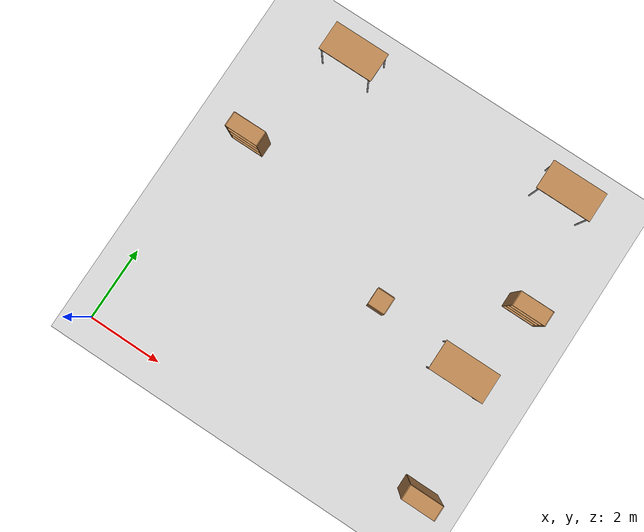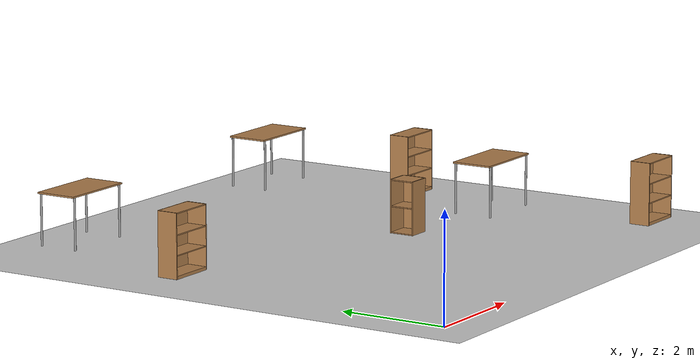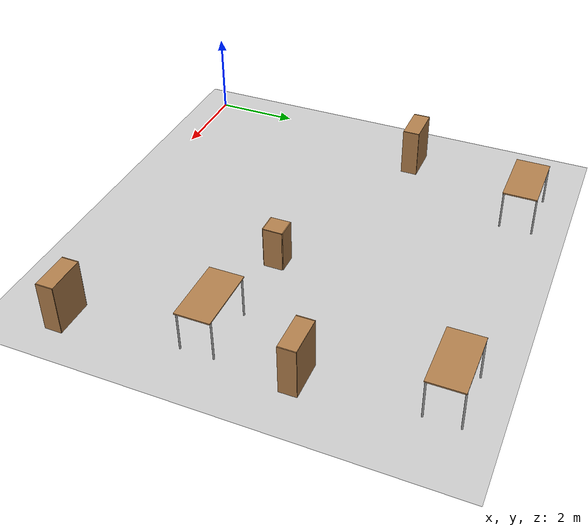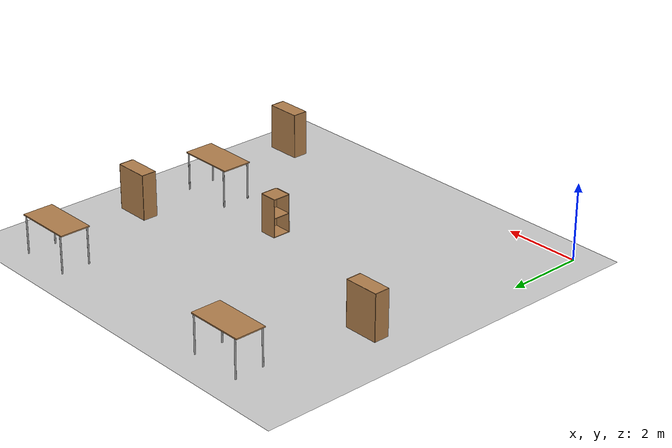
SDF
<sdf version="1.7">
 <world name="default">
  <model name="ground_plane">
   <static>1</static>
   <link name="link">
    <collision name="collision">
     <geometry><plane><normal>0 0 1</normal><size>100 100</size></plane></geometry>
     <surface>
      <contact><collide_bitmask>65535</collide_bitmask></contact>
      <friction><ode><mu>100</mu><mu2>50</mu2></ode></friction>
     </surface>
    </collision>
    <visual name="visual">
     <cast_shadows>0</cast_shadows>
     <geometry><plane><normal>0 0 1</normal><size>100 100</size></plane></geometry>
     <material>
      <script><uri>file://media/materials/scripts/gazebo.material</uri><name>Gazebo/Grey</name></script>
     </material>
    </visual>
   </link>
  </model>
  <model name="table_2">
   <static>1</static>
   <link name="link">
    <collision name="surface">
     <pose>0 0 1 0 -0 0</pose>
     <geometry><box><size>1.5 0.8 0.03</size></box></geometry>
     <surface><friction><ode><mu>0.6</mu><mu2>0.6</mu2></ode></friction></surface>
    </collision>
    <visual name="visual1">
     <pose>0 0 1 0 -0 0</pose>
     <geometry><box><size>1.5 0.8 0.03</size></box></geometry>
     <material>
      <script><uri>file://media/materials/scripts/gazebo.material</uri><name>Gazebo/Wood</name></script>
     </material>
    </visual>
    <collision name="front_left_leg">
     <pose>0.68 0.38 0.5 0 -0 0</pose>
     <geometry><cylinder><radius>0.02</radius><length>1</length></cylinder></geometry>
    </collision>
    <visual name="front_left_leg">
     <pose>0.68 0.38 0.5 0 -0 0</pose>
     <geometry><cylinder><radius>0.02</radius><length>1</length></cylinder></geometry>
     <material>
      <script><uri>file://media/materials/scripts/gazebo.material</uri><name>Gazebo/Grey</name></script>
     </material>
    </visual>
    <collision name="front_right_leg">
     <pose>0.68 -0.38 0.5 0 -0 0</pose>
     <geometry><cylinder><radius>0.02</radius><length>1</length></cylinder></geometry>
    </collision>
    <visual name="front_right_leg">
     <pose>0.68 -0.38 0.5 0 -0 0</pose>
     <geometry><cylinder><radius>0.02</radius><length>1</length></cylinder></geometry>
     <material>
      <script><uri>file://media/materials/scripts/gazebo.material</uri><name>Gazebo/Grey</name></script>
     </material>
    </visual>
    <collision name="back_right_leg">
     <pose>-0.68 -0.38 0.5 0 -0 0</pose>
     <geometry><cylinder><radius>0.02</radius><length>1</length></cylinder></geometry>
    </collision>
    <visual name="back_right_leg">
     <pose>-0.68 -0.38 0.5 0 -0 0</pose>
     <geometry><cylinder><radius>0.02</radius><length>1</length></cylinder></geometry>
     <material>
      <script><uri>file://media/materials/scripts/gazebo.material</uri><name>Gazebo/Grey</name></script>
     </material>
    </visual>
    <collision name="back_left_leg">
     <pose>-0.68 0.38 0.5 0 -0 0</pose>
     <geometry><cylinder><radius>0.02</radius><length>1</length></cylinder></geometry>
    </collision>
    <visual name="back_left_leg">
     <pose>-0.68 0.38 0.5 0 -0 0</pose>
     <geometry><cylinder><radius>0.02</radius><length>1</length></cylinder></geometry>
     <material>
      <script><uri>file://media/materials/scripts/gazebo.material</uri><name>Gazebo/Grey</name></script>
     </material>
    </visual>
   </link>
   <pose>8.28999 3.93907 0 0 -0 0</pose>
  </model>
  <model name="table_7">
   <static>1</static>
   <link name="link">
    <collision name="surface">
     <pose>0 0 1 0 -0 0</pose>
     <geometry><box><size>1.5 0.8 0.03</size></box></geometry>
     <surface><friction><ode><mu>0.6</mu><mu2>0.6</mu2></ode></friction></surface>
    </collision>
    <visual name="visual1">
     <pose>0 0 1 0 -0 0</pose>
     <geometry><box><size>1.5 0.8 0.03</size></box></geometry>
     <material>
      <script><uri>file://media/materials/scripts/gazebo.material</uri><name>Gazebo/Wood</name></script>
     </material>
    </visual>
    <collision name="front_left_leg">
     <pose>0.68 0.38 0.5 0 -0 0</pose>
     <geometry><cylinder><radius>0.02</radius><length>1</length></cylinder></geometry>
    </collision>
    <visual name="front_left_leg">
     <pose>0.68 0.38 0.5 0 -0 0</pose>
     <geometry><cylinder><radius>0.02</radius><length>1</length></cylinder></geometry>
     <material>
      <script><uri>file://media/materials/scripts/gazebo.material</uri><name>Gazebo/Grey</name></script>
     </material>
    </visual>
    <collision name="front_right_leg">
     <pose>0.68 -0.38 0.5 0 -0 0</pose>
     <geometry><cylinder><radius>0.02</radius><length>1</length></cylinder></geometry>
    </collision>
    <visual name="front_right_leg">
     <pose>0.68 -0.38 0.5 0 -0 0</pose>
     <geometry><cylinder><radius>0.02</radius><length>1</length></cylinder></geometry>
     <material>
      <script><uri>file://media/materials/scripts/gazebo.material</uri><name>Gazebo/Grey</name></script>
     </material>
    </visual>
    <collision name="back_right_leg">
     <pose>-0.68 -0.38 0.5 0 -0 0</pose>
     <geometry><cylinder><radius>0.02</radius><length>1</length></cylinder></geometry>
    </collision>
    <visual name="back_right_leg">
     <pose>-0.68 -0.38 0.5 0 -0 0</pose>
     <geometry><cylinder><radius>0.02</radius><length>1</length></cylinder></geometry>
     <material>
      <script><uri>file://media/materials/scripts/gazebo.material</uri><name>Gazebo/Grey</name></script>
     </material>
    </visual>
    <collision name="back_left_leg">
     <pose>-0.68 0.38 0.5 0 -0 0</pose>
     <geometry><cylinder><radius>0.02</radius><length>1</length></cylinder></geometry>
    </collision>
    <visual name="back_left_leg">
     <pose>-0.68 0.38 0.5 0 -0 0</pose>
     <geometry><cylinder><radius>0.02</radius><length>1</length></cylinder></geometry>
     <material>
      <script><uri>file://media/materials/scripts/gazebo.material</uri><name>Gazebo/Grey</name></script>
     </material>
    </visual>
   </link>
   <pose>1.89421 8.93169 0 0 -0 0</pose>
  </model>
  <model name="table_8">
   <static>1</static>
   <link name="link">
    <collision name="surface">
     <pose>0 0 1 0 -0 0</pose>
     <geometry><box><size>1.5 0.8 0.03</size></box></geometry>
     <surface><friction><ode><mu>0.6</mu><mu2>0.6</mu2></ode></friction></surface>
    </collision>
    <visual name="visual1">
     <pose>0 0 1 0 -0 0</pose>
     <geometry><box><size>1.5 0.8 0.03</size></box></geometry>
     <material>
      <script><uri>file://media/materials/scripts/gazebo.material</uri><name>Gazebo/Wood</name></script>
     </material>
    </visual>
    <collision name="front_left_leg">
     <pose>0.68 0.38 0.5 0 -0 0</pose>
     <geometry><cylinder><radius>0.02</radius><length>1</length></cylinder></geometry>
    </collision>
    <visual name="front_left_leg">
     <pose>0.68 0.38 0.5 0 -0 0</pose>
     <geometry><cylinder><radius>0.02</radius><length>1</length></cylinder></geometry>
     <material>
      <script><uri>file://media/materials/scripts/gazebo.material</uri><name>Gazebo/Grey</name></script>
     </material>
    </visual>
    <collision name="front_right_leg">
     <pose>0.68 -0.38 0.5 0 -0 0</pose>
     <geometry><cylinder><radius>0.02</radius><length>1</length></cylinder></geometry>
    </collision>
    <visual name="front_right_leg">
     <pose>0.68 -0.38 0.5 0 -0 0</pose>
     <geometry><cylinder><radius>0.02</radius><length>1</length></cylinder></geometry>
     <material>
      <script><uri>file://media/materials/scripts/gazebo.material</uri><name>Gazebo/Grey</name></script>
     </material>
    </visual>
    <collision name="back_right_leg">
     <pose>-0.68 -0.38 0.5 0 -0 0</pose>
     <geometry><cylinder><radius>0.02</radius><length>1</length></cylinder></geometry>
    </collision>
    <visual name="back_right_leg">
     <pose>-0.68 -0.38 0.5 0 -0 0</pose>
     <geometry><cylinder><radius>0.02</radius><length>1</length></cylinder></geometry>
     <material>
      <script><uri>file://media/materials/scripts/gazebo.material</uri><name>Gazebo/Grey</name></script>
     </material>
    </visual>
    <collision name="back_left_leg">
     <pose>-0.68 0.38 0.5 0 -0 0</pose>
     <geometry><cylinder><radius>0.02</radius><length>1</length></cylinder></geometry>
    </collision>
    <visual name="back_left_leg">
     <pose>-0.68 0.38 0.5 0 -0 0</pose>
     <geometry><cylinder><radius>0.02</radius><length>1</length></cylinder></geometry>
     <material>
      <script><uri>file://media/materials/scripts/gazebo.material</uri><name>Gazebo/Grey</name></script>
     </material>
    </visual>
   </link>
   <pose>8.10734 8.95209 0 0 -0 0</pose>
  </model>
  <model name="cabinet_2">
   <static>1</static>
   <link name="cabinet_bottom_plate">
    <inertial>
     <pose>0 0 -1 0 -0 0</pose>
     <inertia><ixx>2.05</ixx><ixy>0</ixy><ixz>0</ixz><iyy>2.05</iyy><iyz>0</iyz><izz>2.05</izz></inertia>
     <mass>25</mass>
    </inertial>
    <collision name="cabinet_bottom_plate_geom">
     <pose>0 0 0.01 0 -0 0</pose>
     <geometry><box><size>0.45 0.45 0.02</size></box></geometry>
    </collision>
    <visual name="cabinet_bottom_plate_geom_visual">
     <pose>0 0 0.01 0 -0 0</pose>
     <geometry><box><size>0.45 0.45 0.02</size></box></geometry>
     <material>
      <script><uri>file://media/materials/scripts/gazebo.material</uri><name>Gazebo/Wood</name></script>
     </material>
    </visual>
    <collision name="cabinet_bottom_plate_geom_cabinet_back_plate">
     <pose>0.235 0 0.51 0 -0 0</pose>
     <geometry><box><size>0.02 0.45 1.02</size></box></geometry>
    </collision>
    <visual name="cabinet_bottom_plate_geom_cabinet_back_plate_visual">
     <pose>0.235 0 0.51 0 -0 0</pose>
     <geometry><box><size>0.02 0.45 1.02</size></box></geometry>
     <material>
      <script><uri>file://media/materials/scripts/gazebo.material</uri><name>Gazebo/Wood</name></script>
     </material>
    </visual>
    <collision name="cabinet_bottom_plate_geom_cabinet_left_plate">
     <pose>0 0.235 0.51 0 -0 0</pose>
     <geometry><box><size>0.45 0.02 1.02</size></box></geometry>
    </collision>
    <visual name="cabinet_bottom_plate_geom_cabinet_left_plate_visual">
     <pose>0 0.235 0.51 0 -0 0</pose>
     <geometry><box><size>0.45 0.02 1.02</size></box></geometry>
     <material>
      <script><uri>file://media/materials/scripts/gazebo.material</uri><name>Gazebo/Wood</name></script>
     </material>
    </visual>
    <collision name="cabinet_bottom_plate_geom_cabinet_middle_plate">
     <pose>0 0 0.51 0 -0 0</pose>
     <geometry><box><size>0.45 0.45 0.02</size></box></geometry>
    </collision>
    <visual name="cabinet_bottom_plate_geom_cabinet_middle_plate_visual">
     <pose>0 0 0.51 0 -0 0</pose>
     <geometry><box><size>0.45 0.45 0.02</size></box></geometry>
     <material>
      <script><uri>file://media/materials/scripts/gazebo.material</uri><name>Gazebo/Wood</name></script>
     </material>
    </visual>
    <collision name="cabinet_bottom_plate_geom_cabinet_right_plate">
     <pose>0 -0.235 0.51 0 -0 0</pose>
     <geometry><box><size>0.45 0.02 1.02</size></box></geometry>
    </collision>
    <visual name="cabinet_bottom_plate_geom_cabinet_right_plate_visual">
     <pose>0 -0.235 0.51 0 -0 0</pose>
     <geometry><box><size>0.45 0.02 1.02</size></box></geometry>
     <material>
      <script><uri>file://media/materials/scripts/gazebo.material</uri><name>Gazebo/Wood</name></script>
     </material>
    </visual>
    <collision name="cabinet_bottom_plate_geom_cabinet_top_plate">
     <pose>0 0 1.01 0 -0 0</pose>
     <geometry><box><size>0.45 0.45 0.02</size></box></geometry>
    </collision>
    <visual name="cabinet_bottom_plate_geom_cabinet_top_plate_visual">
     <pose>0 0 1.01 0 -0 0</pose>
     <geometry><box><size>0.45 0.45 0.02</size></box></geometry>
     <material>
      <script><uri>file://media/materials/scripts/gazebo.material</uri><name>Gazebo/Wood</name></script>
     </material>
    </visual>
   </link>
   <pose>5.75063 4.24851 0 0 -0 0</pose>
  </model>
  <model name="bookshelf_4">
   <static>1</static>
   <link name="link">
    <inertial><mass>1</mass></inertial>
    <collision name="back">
     <pose>0 0.005 0.6 0 -0 0</pose>
     <geometry><box><size>0.9 0.01 1.2</size></box></geometry>
    </collision>
    <visual name="visual1">
     <pose>0 0.005 0.6 0 -0 0</pose>
     <geometry><box><size>0.9 0.01 1.2</size></box></geometry>
     <material>
      <script><uri>file://media/materials/scripts/gazebo.material</uri><name>Gazebo/Wood</name></script>
     </material>
    </visual>
    <collision name="left_side">
     <pose>0.45 -0.195 0.6 0 -0 0</pose>
     <geometry><box><size>0.02 0.4 1.2</size></box></geometry>
    </collision>
    <visual name="visual2">
     <pose>0.45 -0.195 0.6 0 -0 0</pose>
     <geometry><box><size>0.02 0.4 1.2</size></box></geometry>
     <material>
      <script><uri>file://media/materials/scripts/gazebo.material</uri><name>Gazebo/Wood</name></script>
     </material>
    </visual>
    <collision name="right_side">
     <pose>-0.45 -0.195 0.6 0 -0 0</pose>
     <geometry><box><size>0.02 0.4 1.2</size></box></geometry>
    </collision>
    <visual name="visual3">
     <pose>-0.45 -0.195 0.6 0 -0 0</pose>
     <geometry><box><size>0.02 0.4 1.2</size></box></geometry>
     <material>
      <script><uri>file://media/materials/scripts/gazebo.material</uri><name>Gazebo/Wood</name></script>
     </material>
    </visual>
    <collision name="bottom">
     <pose>0 -0.195 0.03 0 -0 0</pose>
     <geometry><box><size>0.88 0.4 0.06</size></box></geometry>
    </collision>
    <visual name="visual4">
     <pose>0 -0.195 0.03 0 -0 0</pose>
     <geometry><box><size>0.88 0.4 0.06</size></box></geometry>
     <material>
      <script><uri>file://media/materials/scripts/gazebo.material</uri><name>Gazebo/Wood</name></script>
     </material>
    </visual>
    <collision name="top">
     <pose>0 -0.195 1.19 0 -0 0</pose>
     <geometry><box><size>0.88 0.4 0.02</size></box></geometry>
    </collision>
    <visual name="visual5">
     <pose>0 -0.195 1.19 0 -0 0</pose>
     <geometry><box><size>0.88 0.4 0.02</size></box></geometry>
     <material>
      <script><uri>file://media/materials/scripts/gazebo.material</uri><name>Gazebo/Wood</name></script>
     </material>
    </visual>
    <collision name="low_shelf">
     <pose>0 -0.195 0.43 0 -0 0</pose>
     <geometry><box><size>0.88 0.4 0.02</size></box></geometry>
    </collision>
    <visual name="visual6">
     <pose>0 -0.195 0.43 0 -0 0</pose>
     <geometry><box><size>0.88 0.4 0.02</size></box></geometry>
     <material>
      <script><uri>file://media/materials/scripts/gazebo.material</uri><name>Gazebo/Wood</name></script>
     </material>
    </visual>
    <collision name="high_shelf">
     <pose>0 -0.195 0.8 0 -0 0</pose>
     <geometry><box><size>0.88 0.4 0.02</size></box></geometry>
    </collision>
    <visual name="visual7">
     <pose>0 -0.195 0.8 0 -0 0</pose>
     <geometry><box><size>0.88 0.4 0.02</size></box></geometry>
     <material>
      <script><uri>file://media/materials/scripts/gazebo.material</uri><name>Gazebo/Wood</name></script>
     </material>
    </visual>
   </link>
   <pose>0.818644 6.08096 0 0 -0 0</pose>
  </model>
  <model name="bookshelf_5">
   <static>1</static>
   <link name="link">
    <inertial><mass>1</mass></inertial>
    <collision name="back">
     <pose>0 0.005 0.6 0 -0 0</pose>
     <geometry><box><size>0.9 0.01 1.2</size></box></geometry>
    </collision>
    <visual name="visual1">
     <pose>0 0.005 0.6 0 -0 0</pose>
     <geometry><box><size>0.9 0.01 1.2</size></box></geometry>
     <material>
      <script><uri>file://media/materials/scripts/gazebo.material</uri><name>Gazebo/Wood</name></script>
     </material>
    </visual>
    <collision name="left_side">
     <pose>0.45 -0.195 0.6 0 -0 0</pose>
     <geometry><box><size>0.02 0.4 1.2</size></box></geometry>
    </collision>
    <visual name="visual2">
     <pose>0.45 -0.195 0.6 0 -0 0</pose>
     <geometry><box><size>0.02 0.4 1.2</size></box></geometry>
     <material>
      <script><uri>file://media/materials/scripts/gazebo.material</uri><name>Gazebo/Wood</name></script>
     </material>
    </visual>
    <collision name="right_side">
     <pose>-0.45 -0.195 0.6 0 -0 0</pose>
     <geometry><box><size>0.02 0.4 1.2</size></box></geometry>
    </collision>
    <visual name="visual3">
     <pose>-0.45 -0.195 0.6 0 -0 0</pose>
     <geometry><box><size>0.02 0.4 1.2</size></box></geometry>
     <material>
      <script><uri>file://media/materials/scripts/gazebo.material</uri><name>Gazebo/Wood</name></script>
     </material>
    </visual>
    <collision name="bottom">
     <pose>0 -0.195 0.03 0 -0 0</pose>
     <geometry><box><size>0.88 0.4 0.06</size></box></geometry>
    </collision>
    <visual name="visual4">
     <pose>0 -0.195 0.03 0 -0 0</pose>
     <geometry><box><size>0.88 0.4 0.06</size></box></geometry>
     <material>
      <script><uri>file://media/materials/scripts/gazebo.material</uri><name>Gazebo/Wood</name></script>
     </material>
    </visual>
    <collision name="top">
     <pose>0 -0.195 1.19 0 -0 0</pose>
     <geometry><box><size>0.88 0.4 0.02</size></box></geometry>
    </collision>
    <visual name="visual5">
     <pose>0 -0.195 1.19 0 -0 0</pose>
     <geometry><box><size>0.88 0.4 0.02</size></box></geometry>
     <material>
      <script><uri>file://media/materials/scripts/gazebo.material</uri><name>Gazebo/Wood</name></script>
     </material>
    </visual>
    <collision name="low_shelf">
     <pose>0 -0.195 0.43 0 -0 0</pose>
     <geometry><box><size>0.88 0.4 0.02</size></box></geometry>
    </collision>
    <visual name="visual6">
     <pose>0 -0.195 0.43 0 -0 0</pose>
     <geometry><box><size>0.88 0.4 0.02</size></box></geometry>
     <material>
      <script><uri>file://media/materials/scripts/gazebo.material</uri><name>Gazebo/Wood</name></script>
     </material>
    </visual>
    <collision name="high_shelf">
     <pose>0 -0.195 0.8 0 -0 0</pose>
     <geometry><box><size>0.88 0.4 0.02</size></box></geometry>
    </collision>
    <visual name="visual7">
     <pose>0 -0.195 0.8 0 -0 0</pose>
     <geometry><box><size>0.88 0.4 0.02</size></box></geometry>
     <material>
      <script><uri>file://media/materials/scripts/gazebo.material</uri><name>Gazebo/Wood</name></script>
     </material>
    </visual>
   </link>
   <pose>8.80295 6.24138 0 0 -0 0</pose>
  </model>
  <model name="bookshelf_6">
   <static>1</static>
   <link name="link">
    <inertial><mass>1</mass></inertial>
    <collision name="back">
     <pose>0 0.005 0.6 0 -0 0</pose>
     <geometry><box><size>0.9 0.01 1.2</size></box></geometry>
    </collision>
    <visual name="visual1">
     <pose>0 0.005 0.6 0 -0 0</pose>
     <geometry><box><size>0.9 0.01 1.2</size></box></geometry>
     <material>
      <script><uri>file://media/materials/scripts/gazebo.material</uri><name>Gazebo/Wood</name></script>
     </material>
    </visual>
    <collision name="left_side">
     <pose>0.45 -0.195 0.6 0 -0 0</pose>
     <geometry><box><size>0.02 0.4 1.2</size></box></geometry>
    </collision>
    <visual name="visual2">
     <pose>0.45 -0.195 0.6 0 -0 0</pose>
     <geometry><box><size>0.02 0.4 1.2</size></box></geometry>
     <material>
      <script><uri>file://media/materials/scripts/gazebo.material</uri><name>Gazebo/Wood</name></script>
     </material>
    </visual>
    <collision name="right_side">
     <pose>-0.45 -0.195 0.6 0 -0 0</pose>
     <geometry><box><size>0.02 0.4 1.2</size></box></geometry>
    </collision>
    <visual name="visual3">
     <pose>-0.45 -0.195 0.6 0 -0 0</pose>
     <geometry><box><size>0.02 0.4 1.2</size></box></geometry>
     <material>
      <script><uri>file://media/materials/scripts/gazebo.material</uri><name>Gazebo/Wood</name></script>
     </material>
    </visual>
    <collision name="bottom">
     <pose>0 -0.195 0.03 0 -0 0</pose>
     <geometry><box><size>0.88 0.4 0.06</size></box></geometry>
    </collision>
    <visual name="visual4">
     <pose>0 -0.195 0.03 0 -0 0</pose>
     <geometry><box><size>0.88 0.4 0.06</size></box></geometry>
     <material>
      <script><uri>file://media/materials/scripts/gazebo.material</uri><name>Gazebo/Wood</name></script>
     </material>
    </visual>
    <collision name="top">
     <pose>0 -0.195 1.19 0 -0 0</pose>
     <geometry><box><size>0.88 0.4 0.02</size></box></geometry>
    </collision>
    <visual name="visual5">
     <pose>0 -0.195 1.19 0 -0 0</pose>
     <geometry><box><size>0.88 0.4 0.02</size></box></geometry>
     <material>
      <script><uri>file://media/materials/scripts/gazebo.material</uri><name>Gazebo/Wood</name></script>
     </material>
    </visual>
    <collision name="low_shelf">
     <pose>0 -0.195 0.43 0 -0 0</pose>
     <geometry><box><size>0.88 0.4 0.02</size></box></geometry>
    </collision>
    <visual name="visual6">
     <pose>0 -0.195 0.43 0 -0 0</pose>
     <geometry><box><size>0.88 0.4 0.02</size></box></geometry>
     <material>
      <script><uri>file://media/materials/scripts/gazebo.material</uri><name>Gazebo/Wood</name></script>
     </material>
    </visual>
    <collision name="high_shelf">
     <pose>0 -0.195 0.8 0 -0 0</pose>
     <geometry><box><size>0.88 0.4 0.02</size></box></geometry>
    </collision>
    <visual name="visual7">
     <pose>0 -0.195 0.8 0 -0 0</pose>
     <geometry><box><size>0.88 0.4 0.02</size></box></geometry>
     <material>
      <script><uri>file://media/materials/scripts/gazebo.material</uri><name>Gazebo/Wood</name></script>
     </material>
    </visual>
   </link>
   <pose>9.06523 1.09505 0 0 -0 0</pose>
  </model>
 </world>
</sdf>
